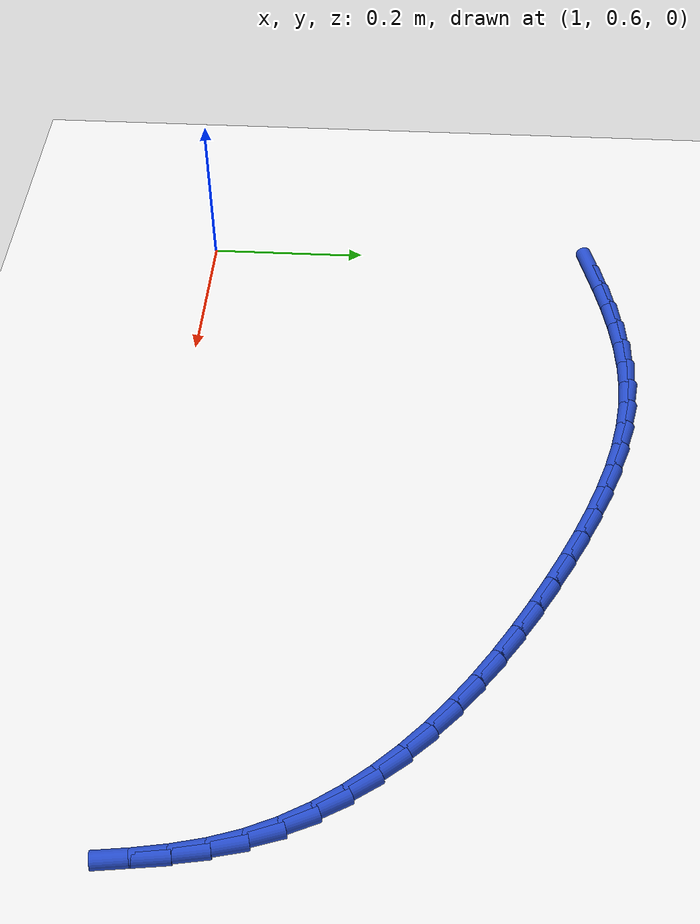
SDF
<sdf version="1.6">
 <world name="default">
  <model name="ground_plane">
   <static>1</static>
   <link name="link">
    <collision name="collision">
     <geometry><plane><normal>0 0 1</normal><size>100 100</size></plane></geometry>
     <surface><friction><ode><mu>100</mu><mu2>50</mu2></ode></friction></surface>
    </collision>
    <visual name="visual">
     <cast_shadows>0</cast_shadows>
     <geometry><plane><normal>0 0 1</normal><size>100 100</size></plane></geometry>
     <material>
      <script><uri>file://media/materials/scripts/gazebo.material</uri><name>Gazebo/WhiteGlow</name></script>
     </material>
    </visual>
   </link>
  </model>
  <model name="line">
   <link name="link_44">
    <pose>1.028654665060478 1.112923775515634 0.01 0 1.57 0.2768444939718171</pose>
    <collision name="collision">
     <geometry><cylinder><radius>0.01</radius><length>0.08</length></cylinder></geometry>
    </collision>
    <visual name="visual">
     <material>
      <script><name>Gazebo/Blue</name><uri>file://media/materials/scripts/gazebo.material</uri></script>
     </material>
     <geometry><cylinder><radius>0.01</radius><length>0.08</length></cylinder></geometry>
    </visual>
   </link>
   <link name="link_45">
    <pose>1.0660312481192138 1.1235439946308918 0.01 0 1.57 0.24571217159944497</pose>
    <collision name="collision">
     <geometry><cylinder><radius>0.01</radius><length>0.08</length></cylinder></geometry>
    </collision>
    <visual name="visual">
     <material>
      <script><name>Gazebo/Blue</name><uri>file://media/materials/scripts/gazebo.material</uri></script>
     </material>
     <geometry><cylinder><radius>0.01</radius><length>0.08</length></cylinder></geometry>
    </visual>
   </link>
   <link name="link_46">
    <pose>1.103433114476712 1.1329236158192615 0.01 0 1.57 0.20620790659444546</pose>
    <collision name="collision">
     <geometry><cylinder><radius>0.01</radius><length>0.08</length></cylinder></geometry>
    </collision>
    <visual name="visual">
     <material>
      <script><name>Gazebo/Blue</name><uri>file://media/materials/scripts/gazebo.material</uri></script>
     </material>
     <geometry><cylinder><radius>0.01</radius><length>0.08</length></cylinder></geometry>
    </visual>
   </link>
   <link name="link_47">
    <pose>1.140829175584525 1.1407461709996822 0.01 0 1.57 0.15791276877775526</pose>
    <collision name="collision">
     <geometry><cylinder><radius>0.01</radius><length>0.08</length></cylinder></geometry>
    </collision>
    <visual name="visual">
     <material>
      <script><name>Gazebo/Blue</name><uri>file://media/materials/scripts/gazebo.material</uri></script>
     </material>
     <geometry><cylinder><radius>0.01</radius><length>0.08</length></cylinder></geometry>
    </visual>
   </link>
   <link name="link_48">
    <pose>1.1781883428942073 1.1466951920910924 0.01 0 1.57 0.10046246006281516</pose>
    <collision name="collision">
     <geometry><cylinder><radius>0.01</radius><length>0.08</length></cylinder></geometry>
    </collision>
    <visual name="visual">
     <material>
      <script><name>Gazebo/Blue</name><uri>file://media/materials/scripts/gazebo.material</uri></script>
     </material>
     <geometry><cylinder><radius>0.01</radius><length>0.08</length></cylinder></geometry>
    </visual>
   </link>
   <link name="link_49">
    <pose>1.2154795278573132 1.1504542110124312 0.01 0 1.57 0.03366507871410601</pose>
    <collision name="collision">
     <geometry><cylinder><radius>0.01</radius><length>0.08</length></cylinder></geometry>
    </collision>
    <visual name="visual">
     <material>
      <script><name>Gazebo/Blue</name><uri>file://media/materials/scripts/gazebo.material</uri></script>
     </material>
     <geometry><cylinder><radius>0.01</radius><length>0.08</length></cylinder></geometry>
    </visual>
   </link>
   <link name="link_50">
    <pose>1.2526716419253952 1.1517067596826362 0.01 0 1.57 -0.04173460928842841</pose>
    <collision name="collision">
     <geometry><cylinder><radius>0.01</radius><length>0.08</length></cylinder></geometry>
    </collision>
    <visual name="visual">
     <material>
      <script><name>Gazebo/Blue</name><uri>file://media/materials/scripts/gazebo.material</uri></script>
     </material>
     <geometry><cylinder><radius>0.01</radius><length>0.08</length></cylinder></geometry>
    </visual>
   </link>
   <link name="link_51">
    <pose>1.2897353893636805 1.150159019954036 0.01 0 1.57 -0.11694974476046575</pose>
    <collision name="collision">
     <geometry><cylinder><radius>0.01</radius><length>0.08</length></cylinder></geometry>
    </collision>
    <visual name="visual">
     <material>
      <script><name>Gazebo/Blue</name><uri>file://media/materials/scripts/gazebo.material</uri></script>
     </material>
     <geometry><cylinder><radius>0.01</radius><length>0.08</length></cylinder></geometry>
    </visual>
   </link>
   <link name="link_52">
    <pose>1.3266654645382308 1.1458202582627384 0.01 0 1.57 -0.18541950344100522</pose>
    <collision name="collision">
     <geometry><cylinder><radius>0.01</radius><length>0.08</length></cylinder></geometry>
    </collision>
    <visual name="visual">
     <material>
      <script><name>Gazebo/Blue</name><uri>file://media/materials/scripts/gazebo.material</uri></script>
     </material>
     <geometry><cylinder><radius>0.01</radius><length>0.08</length></cylinder></geometry>
    </visual>
   </link>
   <link name="link_53">
    <pose>1.3634736787378738 1.138915991716248 0.01 0 1.57 -0.24664395707683806</pose>
    <collision name="collision">
     <geometry><cylinder><radius>0.01</radius><length>0.08</length></cylinder></geometry>
    </collision>
    <visual name="visual">
     <material>
      <script><name>Gazebo/Blue</name><uri>file://media/materials/scripts/gazebo.material</uri></script>
     </material>
     <geometry><cylinder><radius>0.01</radius><length>0.08</length></cylinder></geometry>
    </visual>
   </link>
   <link name="link_54">
    <pose>1.400172212135153 1.1296763978012774 0.01 0 1.57 -0.30056637683307386</pose>
    <collision name="collision">
     <geometry><cylinder><radius>0.01</radius><length>0.08</length></cylinder></geometry>
    </collision>
    <visual name="visual">
     <material>
      <script><name>Gazebo/Blue</name><uri>file://media/materials/scripts/gazebo.material</uri></script>
     </material>
     <geometry><cylinder><radius>0.01</radius><length>0.08</length></cylinder></geometry>
    </visual>
   </link>
   <link name="link_55">
    <pose>1.4367732449026118 1.1183316540045396 0.01 0 1.57 -0.34734988757907026</pose>
    <collision name="collision">
     <geometry><cylinder><radius>0.01</radius><length>0.08</length></cylinder></geometry>
    </collision>
    <visual name="visual">
     <material>
      <script><name>Gazebo/Blue</name><uri>file://media/materials/scripts/gazebo.material</uri></script>
     </material>
     <geometry><cylinder><radius>0.01</radius><length>0.08</length></cylinder></geometry>
    </visual>
   </link>
   <link name="link_56">
    <pose>1.473288957212792 1.1051119378127479 0.01 0 1.57 -0.38728837506278063</pose>
    <collision name="collision">
     <geometry><cylinder><radius>0.01</radius><length>0.08</length></cylinder></geometry>
    </collision>
    <visual name="visual">
     <material>
      <script><name>Gazebo/Blue</name><uri>file://media/materials/scripts/gazebo.material</uri></script>
     </material>
     <geometry><cylinder><radius>0.01</radius><length>0.08</length></cylinder></geometry>
    </visual>
   </link>
   <link name="link_57">
    <pose>1.5097315292382372 1.0902474267126157 0.01 0 1.57 -0.42073535850950294</pose>
    <collision name="collision">
     <geometry><cylinder><radius>0.01</radius><length>0.08</length></cylinder></geometry>
    </collision>
    <visual name="visual">
     <material>
      <script><name>Gazebo/Blue</name><uri>file://media/materials/scripts/gazebo.material</uri></script>
     </material>
     <geometry><cylinder><radius>0.01</radius><length>0.08</length></cylinder></geometry>
    </visual>
   </link>
   <link name="link_58">
    <pose>1.5461131411514906 1.0739682981908554 0.01 0 1.57 -0.44805325515489186</pose>
    <collision name="collision">
     <geometry><cylinder><radius>0.01</radius><length>0.08</length></cylinder></geometry>
    </collision>
    <visual name="visual">
     <material>
      <script><name>Gazebo/Blue</name><uri>file://media/materials/scripts/gazebo.material</uri></script>
     </material>
     <geometry><cylinder><radius>0.01</radius><length>0.08</length></cylinder></geometry>
    </visual>
   </link>
   <link name="link_59">
    <pose>1.5824459473849004 1.0565047054050667 0.01 0 1.57 -0.47163703341844565</pose>
    <collision name="collision">
     <geometry><cylinder><radius>0.01</radius><length>0.08</length></cylinder></geometry>
    </collision>
    <visual name="visual">
     <material>
      <script><name>Gazebo/Blue</name><uri>file://media/materials/scripts/gazebo.material</uri></script>
     </material>
     <geometry><cylinder><radius>0.01</radius><length>0.08</length></cylinder></geometry>
    </visual>
   </link>
   <link name="link_60">
    <pose>1.6186774263969883 1.0380256710820541 0.01 0 1.57 -0.4982961547250398</pose>
    <collision name="collision">
     <geometry><cylinder><radius>0.01</radius><length>0.08</length></cylinder></geometry>
    </collision>
    <visual name="visual">
     <material>
      <script><name>Gazebo/Blue</name><uri>file://media/materials/scripts/gazebo.material</uri></script>
     </material>
     <geometry><cylinder><radius>0.01</radius><length>0.08</length></cylinder></geometry>
    </visual>
   </link>
   <link name="link_61">
    <pose>1.6545508603557815 1.0185072157181858 0.01 0 1.57 -0.5296776074510986</pose>
    <collision name="collision">
     <geometry><cylinder><radius>0.01</radius><length>0.08</length></cylinder></geometry>
    </collision>
    <visual name="visual">
     <material>
      <script><name>Gazebo/Blue</name><uri>file://media/materials/scripts/gazebo.material</uri></script>
     </material>
     <geometry><cylinder><radius>0.01</radius><length>0.08</length></cylinder></geometry>
    </visual>
   </link>
   <link name="link_62">
    <pose>1.689769331394532 0.9978873635447824 0.01 0 1.57 -0.5662557525745743</pose>
    <collision name="collision">
     <geometry><cylinder><radius>0.01</radius><length>0.08</length></cylinder></geometry>
    </collision>
    <visual name="visual">
     <material>
      <script><name>Gazebo/Blue</name><uri>file://media/materials/scripts/gazebo.material</uri></script>
     </material>
     <geometry><cylinder><radius>0.01</radius><length>0.08</length></cylinder></geometry>
    </visual>
   </link>
   <link name="link_63">
    <pose>1.724035921646493 0.9761041387931646 0.01 0 1.57 -0.6086112892046317</pose>
    <collision name="collision">
     <geometry><cylinder><radius>0.01</radius><length>0.08</length></cylinder></geometry>
    </collision>
    <visual name="visual">
     <material>
      <script><name>Gazebo/Blue</name><uri>file://media/materials/scripts/gazebo.material</uri></script>
     </material>
     <geometry><cylinder><radius>0.01</radius><length>0.08</length></cylinder></geometry>
    </visual>
   </link>
   <link name="link_64">
    <pose>1.757053713244916 0.9530955656946529 0.01 0 1.57 -0.6574222308709009</pose>
    <collision name="collision">
     <geometry><cylinder><radius>0.01</radius><length>0.08</length></cylinder></geometry>
    </collision>
    <visual name="visual">
     <material>
      <script><name>Gazebo/Blue</name><uri>file://media/materials/scripts/gazebo.material</uri></script>
     </material>
     <geometry><cylinder><radius>0.01</radius><length>0.08</length></cylinder></geometry>
    </visual>
   </link>
   <link name="link_65">
    <pose>1.7885257883230536 0.9287996684805685 0.01 0 1.57 -0.7134417483590566</pose>
    <collision name="collision">
     <geometry><cylinder><radius>0.01</radius><length>0.08</length></cylinder></geometry>
    </collision>
    <visual name="visual">
     <material>
      <script><name>Gazebo/Blue</name><uri>file://media/materials/scripts/gazebo.material</uri></script>
     </material>
     <geometry><cylinder><radius>0.01</radius><length>0.08</length></cylinder></geometry>
    </visual>
   </link>
   <link name="link_66">
    <pose>1.818155229014159 0.9031544713822317 0.01 0 1.57 -0.7774525084432803</pose>
    <collision name="collision">
     <geometry><cylinder><radius>0.01</radius><length>0.08</length></cylinder></geometry>
    </collision>
    <visual name="visual">
     <material>
      <script><name>Gazebo/Blue</name><uri>file://media/materials/scripts/gazebo.material</uri></script>
     </material>
     <geometry><cylinder><radius>0.01</radius><length>0.08</length></cylinder></geometry>
    </visual>
   </link>
   <link name="link_67">
    <pose>1.8456451174514825 0.8760979986309632 0.01 0 1.57 -0.8501842268915573</pose>
    <collision name="collision">
     <geometry><cylinder><radius>0.01</radius><length>0.08</length></cylinder></geometry>
    </collision>
    <visual name="visual">
     <material>
      <script><name>Gazebo/Blue</name><uri>file://media/materials/scripts/gazebo.material</uri></script>
     </material>
     <geometry><cylinder><radius>0.01</radius><length>0.08</length></cylinder></geometry>
    </visual>
   </link>
   <link name="link_68">
    <pose>1.8706985357682784 0.8475682744580842 0.01 0 1.57 -0.9321810528416091</pose>
    <collision name="collision">
     <geometry><cylinder><radius>0.01</radius><length>0.08</length></cylinder></geometry>
    </collision>
    <visual name="visual">
     <material>
      <script><name>Gazebo/Blue</name><uri>file://media/materials/scripts/gazebo.material</uri></script>
     </material>
     <geometry><cylinder><radius>0.01</radius><length>0.08</length></cylinder></geometry>
    </visual>
   </link>
   <link name="link_69">
    <pose>1.893018566097798 0.8175033230949147 0.01 0 1.57 -1.023613307756846</pose>
    <collision name="collision">
     <geometry><cylinder><radius>0.01</radius><length>0.08</length></cylinder></geometry>
    </collision>
    <visual name="visual">
     <material>
      <script><name>Gazebo/Blue</name><uri>file://media/materials/scripts/gazebo.material</uri></script>
     </material>
     <geometry><cylinder><radius>0.01</radius><length>0.08</length></cylinder></geometry>
    </visual>
   </link>
   <link name="link_70">
    <pose>1.9123082905732935 0.7858411687727761 0.01 0 1.57 -1.1240507909081565</pose>
    <collision name="collision">
     <geometry><cylinder><radius>0.01</radius><length>0.08</length></cylinder></geometry>
    </collision>
    <visual name="visual">
     <material>
      <script><name>Gazebo/Blue</name><uri>file://media/materials/scripts/gazebo.material</uri></script>
     </material>
     <geometry><cylinder><radius>0.01</radius><length>0.08</length></cylinder></geometry>
    </visual>
   </link>
   <link name="link_71">
    <pose>1.9282707913280188 0.7525198357229888 0.01 0 1.57 -1.2308119848595287</pose>
    <collision name="collision">
     <geometry><cylinder><radius>0.01</radius><length>0.08</length></cylinder></geometry>
    </collision>
    <visual name="visual">
     <material>
      <script><name>Gazebo/Blue</name><uri>file://media/materials/scripts/gazebo.material</uri></script>
     </material>
     <geometry><cylinder><radius>0.01</radius><length>0.08</length></cylinder></geometry>
    </visual>
   </link>
   <link name="link_72">
    <pose>1.9406587793571084 0.71749774503529 0.01 0 1.57 -1.3244775293441966</pose>
    <collision name="collision">
     <geometry><cylinder><radius>0.01</radius><length>0.08</length></cylinder></geometry>
    </collision>
    <visual name="visual">
     <material>
      <script><name>Gazebo/Blue</name><uri>file://media/materials/scripts/gazebo.material</uri></script>
     </material>
     <geometry><cylinder><radius>0.01</radius><length>0.08</length></cylinder></geometry>
    </visual>
   </link>
   <link name="link_73">
    <pose>1.9498388212014712 0.6809856049601504 0.01 0 1.57 -1.3931888268229862</pose>
    <collision name="collision">
     <geometry><cylinder><radius>0.01</radius><length>0.08</length></cylinder></geometry>
    </collision>
    <visual name="visual">
     <material>
      <script><name>Gazebo/Blue</name><uri>file://media/materials/scripts/gazebo.material</uri></script>
     </material>
     <geometry><cylinder><radius>0.01</radius><length>0.08</length></cylinder></geometry>
    </visual>
   </link>
   <link name="link_74">
    <pose>1.9565917857942763 0.6433643969905791 0.01 0 1.57 -1.43820079650926</pose>
    <collision name="collision">
     <geometry><cylinder><radius>0.01</radius><length>0.08</length></cylinder></geometry>
    </collision>
    <visual name="visual">
     <material>
      <script><name>Gazebo/Blue</name><uri>file://media/materials/scripts/gazebo.material</uri></script>
     </material>
     <geometry><cylinder><radius>0.01</radius><length>0.08</length></cylinder></geometry>
    </visual>
   </link>
  </model>
 </world>
</sdf>
